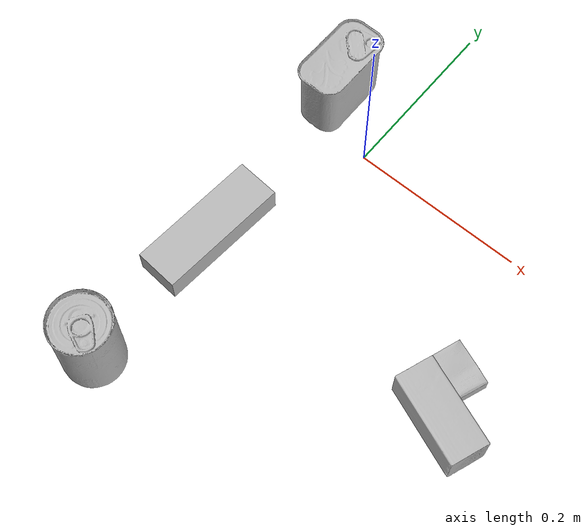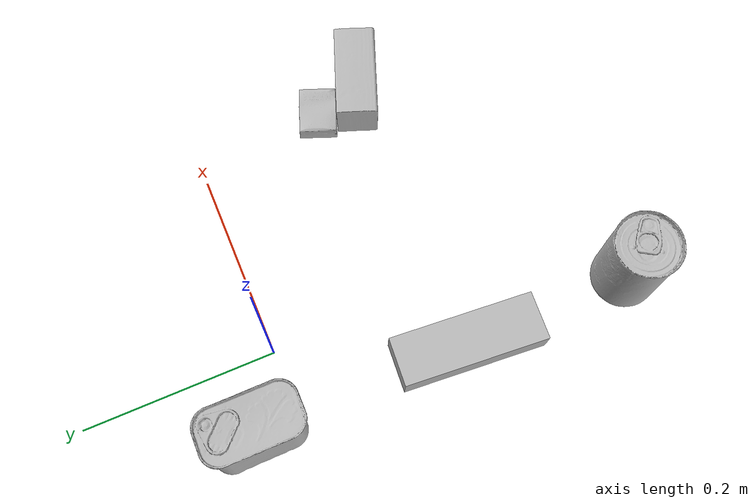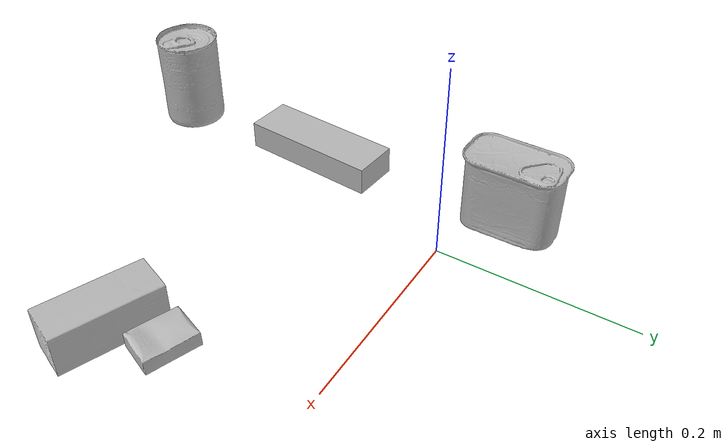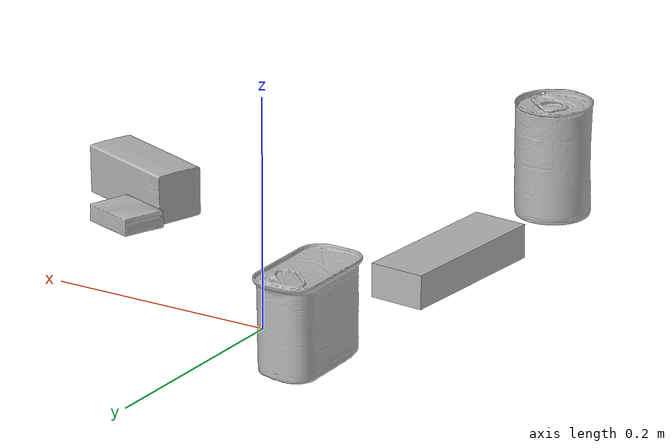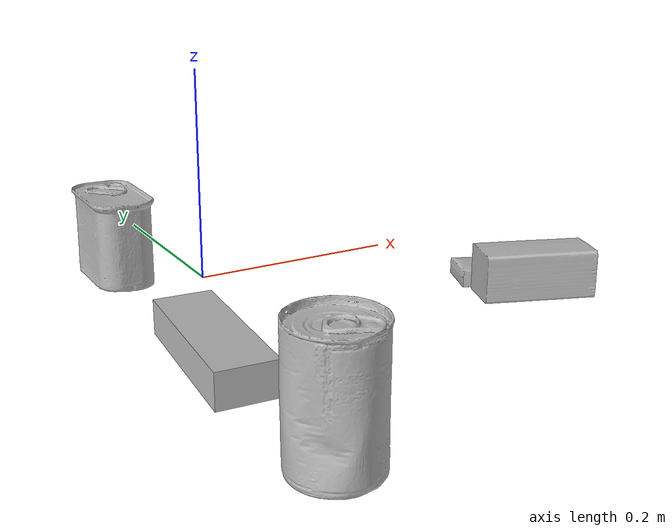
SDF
<sdf version="1.4">
  <world name="default">
    <light name="light1" type="point">
      <pose>0 0 1 0 0 0</pose>
      <diffuse>3 3 3 1</diffuse>
      <specular>3 3 3 1</specular>
    </light>
    <light name="light2" type="point">
      <pose>0 0.5 2 0 0 0</pose>
      <diffuse>1 1 1 1</diffuse>
      <specular>1 1 1 1</specular>
    </light>
    <light name="light3" type="point">
      <pose>0 0.5 2 0 0 0</pose>
      <diffuse>3 3 3 1</diffuse>
      <specular>3 3 3 1</specular>
    </light>
    <scene>
      <ambient>0.7 0.7 0.7</ambient>
    </scene>
    <model name="box1">
      <link name="link_box1">
        <collision name="default">
          <geometry>
            <mesh>
              <uri>model://jenga/collision_meshes/collision.obj</uri>
              <scale>1.0 1.0 1.0</scale>
            </mesh>
          </geometry>
          <surface>
            <friction>
              <ode>
                <mu>0.5</mu>
                <mu2>0.5</mu2>
              </ode>
            </friction>
          <contact>
        <ode>
            <max_vel>0</max_vel>
            <min_depth>0.0001</min_depth>
            <kp>1e8</kp>
        </ode>
    </contact></surface>
        </collision>
        <visual name="default">
          <geometry>
            <mesh>
              <uri>model://jenga/visual_meshes/visual.dae</uri>
              <scale>1.0 1.0 1.0</scale>
            </mesh>
          </geometry>
        </visual>
        <inertial>
          <mass>0.13349448144435883</mass>
          <pose>-2.502855807051674e-07 -0.00010250010382151231 -4.0923401684267446e-05 0.0 -7.342153480750062e-07 0.0</pose>
          <inertia>
            <ixx>3.694116e-05</ixx>
            <iyy>0.0002503123</iyy>
            <izz>0.00026722968</izz>
            <ixy>0</ixy>
            <ixz>0</ixz>
            <iyz>0</iyz>
          </inertia>
        </inertial>
      </link>
      <pose>-0.0679483488202095 -0.18114115297794342 0.014999997802078724 8.403855588098261e-09 1.8513527558552834e-10 -1.6470788372680971</pose>
    </model>
    <model name="box2">
      <link name="link_box2">
        <collision name="default">
          <geometry>
            <mesh>
              <uri>model://cracker_box/collision_meshes/collision.obj</uri>
              <scale>0.25 0.25 0.25</scale>
            </mesh>
          </geometry>
          <surface>
            <friction>
              <ode>
                <mu>0.5</mu>
                <mu2>0.5</mu2>
              </ode>
            </friction>
          <contact>
        <ode>
            <max_vel>0</max_vel>
            <min_depth>0.0001</min_depth>
            <kp>1e8</kp>
        </ode>
    </contact></surface>
        </collision>
        <visual name="default">
          <geometry>
            <mesh>
              <uri>model://cracker_box/visual_meshes/visual.dae</uri>
              <scale>0.25 0.25 0.25</scale>
            </mesh>
          </geometry>
        </visual>
        <inertial>
          <mass>0.02145323157310486</mass>
          <pose>0.00023660292208660394 6.358561950037256e-05 -0.00042573839891701937 -0.00031620765701486096 -0.011106487737550933 0.0025467954675071156</pose>
          <inertia>
            <ixx>3.4104648e-06</ixx>
            <iyy>5.631348e-06</iyy>
            <izz>8.036451e-06</izz>
            <ixy>0</ixy>
            <ixz>0</ixz>
            <iyz>0</iyz>
          </inertia>
        </inertial>
      </link>
      <pose>0.22868908941745758 -0.1395619809627533 0.009115575812757015 -0.007702015955773743 -0.0027505039192533137 2.778990860096074</pose>
    </model>
    <model name="box3">
      <link name="link_box3">
        <collision name="default">
          <geometry>
            <mesh>
              <uri>model://wood_block/collision_meshes/collision.obj</uri>
              <scale>0.5 0.5 0.5</scale>
            </mesh>
          </geometry>
          <surface>
            <friction>
              <ode>
                <mu>0.5</mu>
                <mu2>0.5</mu2>
              </ode>
            </friction>
          <contact>
        <ode>
            <max_vel>0</max_vel>
            <min_depth>0.0001</min_depth>
            <kp>1e8</kp>
        </ode>
    </contact></surface>
        </collision>
        <visual name="default">
          <geometry>
            <mesh>
              <uri>model://wood_block/visual_meshes/visual.dae</uri>
              <scale>0.5 0.5 0.5</scale>
            </mesh>
          </geometry>
        </visual>
        <inertial>
          <mass>0.16313479840755463</mass>
          <pose>-2.9066577553749084e-06 -0.000285404734313488 0.00013204291462898254 -0.05221116552051519 -0.005192696094342747 -0.006861377806143115</pose>
          <inertia>
            <ixx>5.457476e-05</ixx>
            <iyy>0.00017240169</iyy>
            <izz>0.00017175681</izz>
            <ixy>0</ixy>
            <ixz>0</ixz>
            <iyz>0</iyz>
          </inertia>
        </inertial>
      </link>
      <pose>0.24432487785816193 -0.1908891499042511 0.022629253566265106 -0.0052066204650707965 0.005718977585484392 -0.3578704884190931</pose>
    </model>
    <model name="can1">
      <link name="link_can1">
        <collision name="default">
          <geometry>
            <mesh>
              <uri>model://potted_meat_can/collision_meshes/collision.obj</uri>
              <scale>1.0 1.0 1.0</scale>
            </mesh>
          </geometry>
          <surface>
            <friction>
              <ode>
                <mu>0.5</mu>
                <mu2>0.5</mu2>
              </ode>
            </friction>
          <contact>
        <ode>
            <max_vel>0</max_vel>
            <min_depth>0.0001</min_depth>
            <kp>1e8</kp>
        </ode>
    </contact></surface>
        </collision>
        <visual name="default">
          <geometry>
            <mesh>
              <uri>model://potted_meat_can/visual_meshes/visual.dae</uri>
              <scale>1.0 1.0 1.0</scale>
            </mesh>
          </geometry>
        </visual>
        <inertial>
          <mass>0.5782443881034851</mass>
          <pose>0.00022888134117238224 -5.989118290017359e-05 -0.0006367441383190453 -0.028093373189925445 -0.007232601430987569 0.015406267190211613</pose>
          <inertia>
            <ixx>0.0007438508</ixx>
            <iyy>0.00045194585</iyy>
            <izz>0.0005410098</izz>
            <ixy>0</ixy>
            <ixz>0</ixz>
            <iyz>0</iyz>
          </inertia>
        </inertial>
      </link>
      <pose>-0.07078118622303009 0.04328436031937599 0.04212801530957222 1.8042426859217543e-08 -5.004953113677469e-07 3.13074191490728</pose>
    </model>
    <model name="can2">
      <link name="link_can2">
        <collision name="default">
          <geometry>
            <mesh>
              <uri>model://tomato_soup_can/collision_meshes/collision.obj</uri>
              <scale>1.0 1.0 1.0</scale>
            </mesh>
          </geometry>
          <surface>
            <friction>
              <ode>
                <mu>0.5</mu>
                <mu2>0.5</mu2>
              </ode>
            </friction>
          <contact>
        <ode>
            <max_vel>0</max_vel>
            <min_depth>0.0001</min_depth>
            <kp>1e8</kp>
        </ode>
    </contact></surface>
        </collision>
        <visual name="default">
          <geometry>
            <mesh>
              <uri>model://tomato_soup_can/visual_meshes/visual.dae</uri>
              <scale>1.0 1.0 1.0</scale>
            </mesh>
          </geometry>
        </visual>
        <inertial>
          <mass>0.191082164645195</mass>
          <pose>0.00012652273289859295 0.00010805522470036522 -0.0017973986687138677 0.007020071598615513 0.0004229929517945175 -0.009903241323856832</pose>
          <inertia>
            <ixx>0.0002095054</ixx>
            <iyy>0.00020829454</iyy>
            <izz>0.0001085847</izz>
            <ixy>0</ixy>
            <ixz>0</ixz>
            <iyz>0</iyz>
          </inertia>
        </inertial>
      </link>
      <pose>-0.06487970799207687 -0.3597470223903656 0.05127400532364845 -5.96083463670518e-07 -8.460342364902772e-07 0.7285898271851231</pose>
    </model>
  <physics type="ode">
      <max_contacts>50</max_contacts>
      <ode>
        <solver>
          <type>quick</type>
          <iters>75</iters>
        </solver>
        <constraints>
          <contact_max_correcting_vel>0</contact_max_correcting_vel>
          <contact_surface_layer>0</contact_surface_layer>
        </constraints>
      </ode>
    </physics></world>
</sdf>
